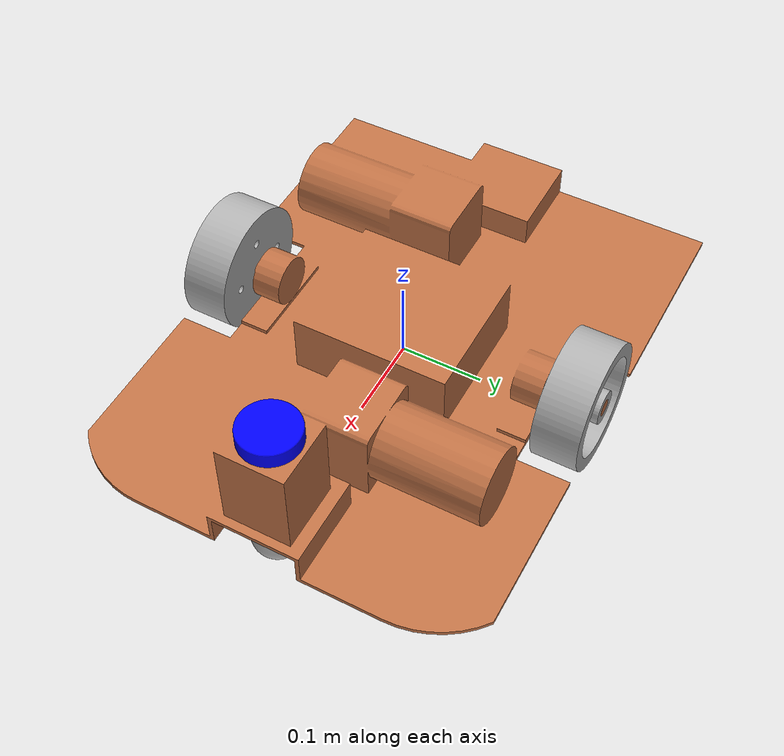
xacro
<?xml version="1.0" ?>
<robot name="imr" xmlns:xacro="http://www.ros.org/wiki/xacro">

<xacro:include filename="$(find imr_description)/urdf/materials.xacro" />
<xacro:include filename="$(find imr_description)/urdf/imr.trans" />
<xacro:include filename="$(find imr_description)/urdf/imr.gazebo" />
<link name="base_link">
  <inertial>
    <origin xyz="0.022885965070435485 0.0028013663753327957 0.04241824699835381" rpy="0 0 0"/>
    <mass value="61.90750329454997"/>
    <inertia ixx="0.691466" iyy="1.572076" izz="2.136055" ixy="-0.337493" iyz="0.001304" ixz="-0.083077"/>
  </inertial>
  <visual>
    <origin xyz="0 0 0" rpy="0 0 0"/>
    <geometry>
      <mesh filename="package://imr_description/meshes/base_link.stl" scale="0.001 0.001 0.001"/>
    </geometry>
    <material name="metal-material"/>
  </visual>
  <collision>
    <origin xyz="0 0 0" rpy="0 0 0"/>
    <geometry>
      <mesh filename="package://imr_description/meshes/base_link.stl" scale="0.001 0.001 0.001"/>
    </geometry>
  </collision>
</link>

<link name="lidar_1">
  <inertial>
    <origin xyz="0.0 2.4234088208680315e-07 0.009976818466253645" rpy="0 0 0"/>
    <mass value="0.6027438485203475"/>
    <inertia ixx="0.000204" iyy="0.000204" izz="0.000368" ixy="0.0" iyz="0.0" ixz="0.0"/>
  </inertial>
  <visual>
    <origin xyz="-0.275 -8e-06 -0.151" rpy="0 0 0"/>
    <geometry>
      <mesh filename="package://imr_description/meshes/lidar_1.stl" scale="0.001 0.001 0.001"/>
    </geometry>
    <material name="blue"/>
  </visual>
  <collision>
    <origin xyz="-0.275 -8e-06 -0.151" rpy="0 0 0"/>
    <geometry>
      <mesh filename="package://imr_description/meshes/lidar_1.stl" scale="0.001 0.001 0.001"/>
    </geometry>
  </collision>
</link>

<link name="front_caster_1">
  <inertial>
    <origin xyz="-5.551115123125783e-17 0.0 -0.032390624999999916" rpy="0 0 0"/>
    <mass value="2.4205025342471604"/>
    <inertia ixx="0.000818" iyy="0.000818" izz="0.000599" ixy="-0.0" iyz="-0.0" ixz="0.0"/>
  </inertial>
  <visual>
    <origin xyz="-0.28 -0.0 -0.038" rpy="0 0 0"/>
    <geometry>
      <mesh filename="package://imr_description/meshes/front_caster_1.stl" scale="0.001 0.001 0.001"/>
    </geometry>
    <material name="silver"/>
  </visual>
  <collision>
    <origin xyz="-0.28 -0.0 -0.038" rpy="0 0 0"/>
    <geometry>
      <mesh filename="package://imr_description/meshes/front_caster_1.stl" scale="0.001 0.001 0.001"/>
    </geometry>
  </collision>
</link>

<link name="back_caster_1">
  <inertial>
    <origin xyz="-1.1102230246251565e-16 0.0 -0.032390624999999916" rpy="0 0 0"/>
    <mass value="2.4205025342471604"/>
    <inertia ixx="0.000818" iyy="0.000818" izz="0.000599" ixy="0.0" iyz="-0.0" ixz="0.0"/>
  </inertial>
  <visual>
    <origin xyz="0.275 -0.0 -0.038" rpy="0 0 0"/>
    <geometry>
      <mesh filename="package://imr_description/meshes/back_caster_1.stl" scale="0.001 0.001 0.001"/>
    </geometry>
    <material name="silver"/>
  </visual>
  <collision>
    <origin xyz="0.275 -0.0 -0.038" rpy="0 0 0"/>
    <geometry>
      <mesh filename="package://imr_description/meshes/back_caster_1.stl" scale="0.001 0.001 0.001"/>
    </geometry>
  </collision>
</link>

<link name="right_wheel_1">
  <inertial>
    <origin xyz="-3.097572436676371e-14 0.03193436324995916 6.938893903907228e-18" rpy="0 0 0"/>
    <mass value="6.034176390270744"/>
    <inertia ixx="0.01093" iyy="0.019323" izz="0.01093" ixy="-0.0" iyz="0.0" ixz="-0.0"/>
  </inertial>
  <visual>
    <origin xyz="-0.0 0.25 -0.04" rpy="0 0 0"/>
    <geometry>
      <mesh filename="package://imr_description/meshes/right_wheel_1.stl" scale="0.001 0.001 0.001"/>
    </geometry>
    <material name="silver"/>
  </visual>
  <collision>
    <origin xyz="-0.0 0.25 -0.04" rpy="0 0 0"/>
    <geometry>
      <mesh filename="package://imr_description/meshes/right_wheel_1.stl" scale="0.001 0.001 0.001"/>
    </geometry>
  </collision>
</link>

<link name="left_wheel_1">
  <inertial>
    <origin xyz="7.489546800672808e-15 -0.03193436324995916 1.3877787807814457e-17" rpy="0 0 0"/>
    <mass value="6.0341763902707495"/>
    <inertia ixx="0.01093" iyy="0.019323" izz="0.01093" ixy="0.0" iyz="-0.0" ixz="0.0"/>
  </inertial>
  <visual>
    <origin xyz="-0.0 -0.25 -0.04" rpy="0 0 0"/>
    <geometry>
      <mesh filename="package://imr_description/meshes/left_wheel_1.stl" scale="0.001 0.001 0.001"/>
    </geometry>
    <material name="silver"/>
  </visual>
  <collision>
    <origin xyz="-0.0 -0.25 -0.04" rpy="0 0 0"/>
    <geometry>
      <mesh filename="package://imr_description/meshes/left_wheel_1.stl" scale="0.001 0.001 0.001"/>
    </geometry>
  </collision>
</link>

<joint name="lidar_joint" type="fixed">
  <origin xyz="0.275 8e-06 0.151" rpy="0 0 0"/>
  <parent link="base_link"/>
  <child link="lidar_1"/>
</joint>

<joint name="front_caster_joint" type="fixed">
  <origin xyz="0.28 0.0 0.038" rpy="0 0 0"/>
  <parent link="base_link"/>
  <child link="front_caster_1"/>
</joint>

<joint name="back_caster_joint" type="fixed">
  <origin xyz="-0.275 0.0 0.038" rpy="0 0 0"/>
  <parent link="base_link"/>
  <child link="back_caster_1"/>
</joint>

<joint name="right_wheel_joint" type="continuous">
  <origin xyz="0.0 -0.25 0.04" rpy="0 0 0"/>
  <parent link="base_link"/>
  <child link="right_wheel_1"/>
  <axis xyz="0.0 1.0 0.0"/>
</joint>

<joint name="left_wheel_joint" type="continuous">
  <origin xyz="0.0 0.25 0.04" rpy="0 0 0"/>
  <parent link="base_link"/>
  <child link="left_wheel_1"/>
  <axis xyz="0.0 1.0 0.0"/>
</joint>

</robot>

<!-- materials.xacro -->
<robot name="mobot" xmlns:xacro="http://www.ros.org/wiki/xacro" >

<material name="silver">
  <color rgba="0.700 0.700 0.700 1.000"/>
</material>

<material name="blue">
  <color rgba="0.000 0.000 1.000 1.000"/>
</material>

<material name="metal-material">
  <color rgba="0.760 0.450 0.275 1.000"/>
</material>

</robot>

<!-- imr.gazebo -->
<robot name="imr" xmlns:xacro="http://www.ros.org/wiki/xacro" >

<xacro:property name="body_color" value="Gazebo/silver" />
<xacro:property name="base_link_color" value="Gazebo/metal-material" />
<xacro:property name="lidar_color" value="Gazebo/Blue" />

<gazebo>
  <plugin name="control" filename="libgazebo_ros_control.so"/>
</gazebo>
<gazebo reference="base_link">
  <material>${base_link_color}</material>
  <mu1>100.0</mu1>
  <mu2>100.0</mu2>
  <selfCollide>true</selfCollide>
  <gravity>true</gravity>
</gazebo>

<gazebo reference="lidar_1">
  <material>${lidar_color}</material>
  <mu1>100.0</mu1>
  <mu2>100.0</mu2>
  <selfCollide>true</selfCollide>
</gazebo>

<gazebo reference="front_caster_1">
  <material>${body_color}</material>
  <mu1>0.05</mu1>
  <mu2>0.05</mu2>
  <selfCollide>true</selfCollide>
</gazebo>

<gazebo reference="back_caster_1">
  <material>${body_color}</material>
  <mu1>0.05</mu1>
  <mu2>0.05</mu2>
  <selfCollide>true</selfCollide>
</gazebo>

<gazebo reference="right_wheel_1">
  <material>${body_color}</material>
  <mu1>1000.0</mu1>
  <mu2>1000.0</mu2>
  <selfCollide>true</selfCollide>
</gazebo>

<gazebo reference="left_wheel_1">
  <material>${body_color}</material>
  <mu1>1000.0</mu1>
  <mu2>1000.0</mu2>
  <selfCollide>true</selfCollide>
</gazebo>

<gazebo>
  <plugin name="differential_drive_controller" filename="libgazebo_ros_diff_drive.so">

    <!-- Plugin update rate in Hz -->
    <updateRate>20</updateRate>

    <!-- Name of left joint, defaults to `left_joint` -->
    <leftJoint>left_wheel_joint</leftJoint>

    <!-- Name of right joint, defaults to `right_joint` -->
    <rightJoint>right_wheel_joint</rightJoint>

    <!-- The distance from the center of one wheel to the other, in meters, defaults to 0.34 m -->
    <wheelSeparation>0.44</wheelSeparation>

    <!-- Diameter of the wheels, in meters, defaults to 0.15 m -->
    <wheelDiameter>0.15</wheelDiameter>

    <!-- Wheel acceleration, in rad/s^2, defaults to 0.0 rad/s^2 -->
    <wheelAcceleration>1.0</wheelAcceleration>

    <!-- Maximum torque which the wheels can produce, in Nm, defaults to 5 Nm -->
    <wheelTorque>16</wheelTorque>

    <!-- Topic to receive geometry_msgs/Twist message commands, defaults to `cmd_vel` -->
    <commandTopic>cmd_vel</commandTopic>

    <!-- Topic to publish nav_msgs/Odometry messages, defaults to `odom` -->
    <odometryTopic>odom</odometryTopic>

    <!-- Odometry frame, defaults to `odom` -->
    <odometryFrame>odom</odometryFrame>

    <!-- Robot frame to calculate odometry from, defaults to `base_footprint` -->
    <robotBaseFrame>base_link</robotBaseFrame>

    <!-- Odometry source, 0 for ENCODER, 1 for WORLD, defaults to WORLD -->
    <odometrySource>0</odometrySource>

    <!-- Set to true to publish transforms for the wheel links, defaults to false -->
    <publishWheelTF>false</publishWheelTF>

    <!-- Set to true to publish transforms for the odometry, defaults to true -->
    <publishOdom>false</publishOdom>

    <!-- Set to true to publish sensor_msgs/JointState on /joint_states for the wheel joints, defaults to false -->
    <publishWheelJointState>false</publishWheelJointState>

    <!-- Set to true to swap right and left wheels, defaults to true -->
    <legacyMode>false</legacyMode>
  </plugin>
</gazebo>

<gazebo reference="lidar_1">
    <sensor type="ray" name="ydlidar">
      <pose>0 0 0 0 0 0</pose>
      <visualize>false</visualize>
      <update_rate>40</update_rate>
      <ray>
        <scan>
          <horizontal>
            <samples>295</samples>
            <resolution>1</resolution>
            <min_angle>-3.14</min_angle>
            <max_angle>3.14</max_angle>
          </horizontal>
        </scan>
        <range>
          <min>0.10</min>
          <max>8.0</max>
          <resolution>0.01</resolution>
        </range>
        <noise>
          <type>gaussian</type>
          <mean>0.0</mean>
          <stddev>0.01</stddev>
        </noise>
      </ray>
      <plugin name="gazebo_ros_head_hokuyo_controller" filename="libgazebo_ros_laser.so">
        <topicName>/scan</topicName>
        <frameName>lidar_1</frameName>
      </plugin>
    </sensor>
  </gazebo>

</robot>
